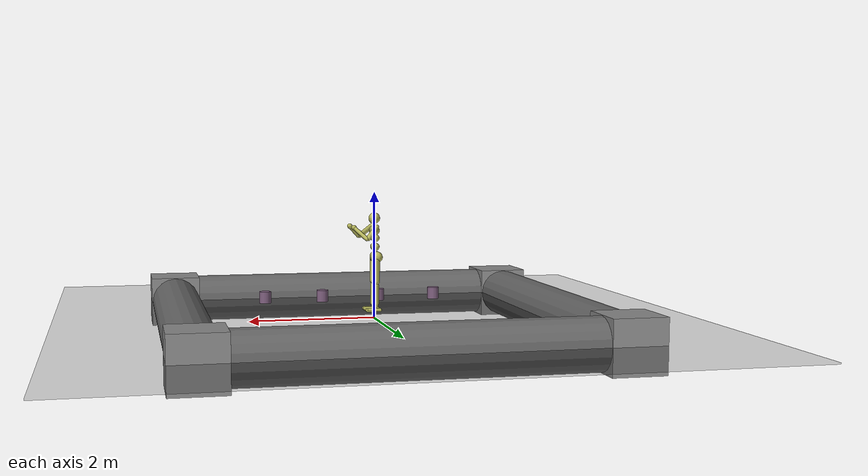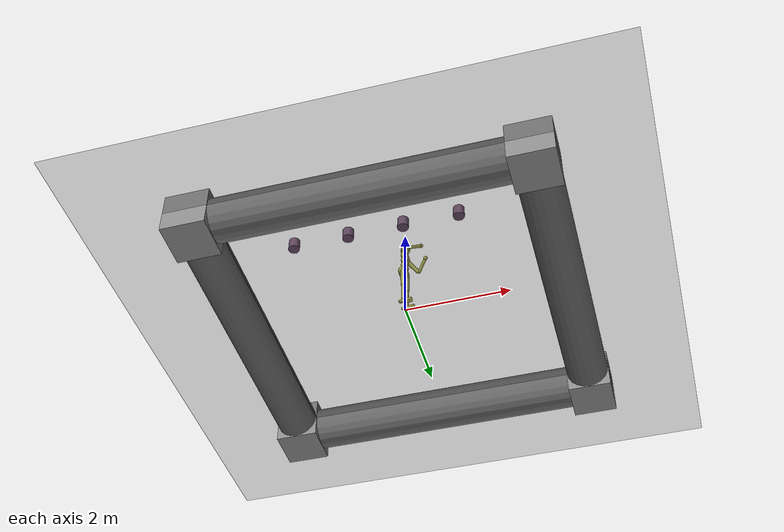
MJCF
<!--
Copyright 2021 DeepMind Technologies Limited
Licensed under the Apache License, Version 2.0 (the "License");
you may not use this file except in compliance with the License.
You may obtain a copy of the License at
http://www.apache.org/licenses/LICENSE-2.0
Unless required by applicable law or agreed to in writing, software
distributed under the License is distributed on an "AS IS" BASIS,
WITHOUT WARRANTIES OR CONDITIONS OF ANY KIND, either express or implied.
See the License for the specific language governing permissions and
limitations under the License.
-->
<mujoco model="Swarm">

    <compiler angle="degree"/>

    <option timestep="0.01" iterations="50" solver="Newton" jacobian="sparse" cone="pyramidal" tolerance="1e-10"/>

    <size njmax="1500" nconmax="500" nstack="5000000"/>

    <default>
        <geom solimp=".9 .9 .01"/>

        <default class="humanoid">
            <geom material="humanoid"/>
            <joint damping="1" limited="true"/>
        </default>

        <default class="bot">
            <geom type="cylinder" material="bot" size="0.1 0.1" condim="4" mass="5" friction="1 .01 .01"/>
        </default>

        <default class="border">
            <geom type="capsule" size="0.4" rgba=".4 .4 .4 1"/>
        </default>

        <default class="borderpost">
            <geom type="box" size="0.41 0.41 0.41" rgba=".55 .55 .55 1"/>
        </default>

        <default class="position">
			<position ctrllimited="true" forcelimited="false"></position>
		</default>

        <joint limited="true" damping="1" armature="0"/>
        <motor ctrlrange="-10 10" ctrllimited="true"/>
    </default>

    <asset>
        <texture type="skybox" builtin="gradient" width="128" height="128" rgb1=".4 .6 .8" rgb2="0 0 0"/>
        <texture name="texgeom" type="cube" builtin="flat" mark="cross" width="128" height="128"
            rgb1="0.6 0.6 0.6" rgb2="0.6 0.6 0.6" markrgb="1 1 1"/>
        <texture name="texplane" type="2d" builtin="checker" rgb1=".4 .4 .4" rgb2=".6 .6 .6"
            width="512" height="512"/>
        <material name='MatPlane' reflectance='0.3' texture="texplane" texrepeat="1 1" texuniform="true"/>
        <material name='humanoid' texture="texgeom" texuniform="true" rgba="1.2 1.2 0.6 1"/>
        <material name='bot' texture="texgeom" texuniform="true" rgba=".8 .6 .8 1" />
    </asset>

    <visual>
        <quality shadowsize="4096" offsamples="8"/>
        <map znear="0.1" force="0.05"/>
    </visual>

    <statistic extent="4"/>

    <worldbody>
        <light directional="true" diffuse=".8 .8 .8" pos="0 0 10" dir="0 0 -10"/>

        <geom type="box" size="5 5 .01" rgba="0 0 0 .1"/>
        <body name="agent1" pos="-1.5 -2 0">
            <geom class='bot' pos='0 0 .11'/>
            <joint name='slide1x' type='slide' pos='1 0 .11' axis='1 0 0' range='-50 50'/>
            <joint name='slide1y' type='slide' pos='1 0 .11' axis='0 1 0' range='-50 50'/>
        </body>
        <body name="agent2" pos="-0.5 -2 0">
            <geom class='bot' pos='0 0 .11'/>
            <joint name='slide2x' type='slide' pos='2 0 .11' axis='1 0 0' range='-50 50'/>
            <joint name='slide2y' type='slide' pos='2 0 .11' axis='0 1 0' range='-50 50'/>
        </body>
        <body name="agent3" pos="0.5 -2 0">
            <geom class='bot' pos='0 0 .11'/>
            <joint name='slide3x' type='slide' pos='3 0 .11' axis='1 0 0' range='-50 50'/>
            <joint name='slide3y' type='slide' pos='3 0 .11' axis='0 1 0' range='-50 50'/>
        </body>
        <body name="agent4" pos="1.5 -2 0">
            <geom class='bot' pos='0 0 .11'/>
            <joint name='slide4x' type='slide' pos='4 0 .11' axis='1 0 0' range='-50 50'/>
            <joint name='slide4y' type='slide' pos='4 0 .11' axis='0 1 0' range='-50 50'/>
        </body>

        <geom class="border" fromto="-3 3 0 3 3 0"  />
        <geom class="border" fromto="-3 -3 0 3 -3 0"  />
        <geom class="border" fromto="3 3 0 3 -3 0"  />
        <geom class="border" fromto="-3 3 0 -3 -3 0"  />
        <geom class="borderpost" pos="3 3 0"/>
        <geom class="borderpost" pos="-3 3 0"/>
        <geom class="borderpost" pos="3 -3 0"/>
        <geom class="borderpost" pos="-3 -3 0"/>

        <body name='target' pos='0 0 1.4' childclass="humanoid">
            <freejoint name="root"/>
            <geom name='torso1' type='capsule' fromto='0 -.07 0 0 .07 0'  size='0.07'/>
            <geom name='head' type='sphere' pos='0 0 .19' size='.09'/>
            <geom name='uwaist' type='capsule' fromto='-.01 -.06 -.12 -.01 .06 -.12' size='0.06'/>
            <body name='lwaist' pos='-.01 0 -0.260' quat='1.000 0 -0.002 0' >
                <geom name='lwaist' type='capsule' fromto='0 -.06 0 0 .06 0'  size='0.06' />
                <joint name='abdomen_z' type='hinge' pos='0 0 0.065' axis='0 0 1' range='-45 45' damping='5' stiffness='20' armature='0.02' />
                <joint name='abdomen_y' type='hinge' pos='0 0 0.065' axis='0 1 0' range='-75 30' damping='5' stiffness='10' armature='0.02' />
                <body name='pelvis' pos='0 0 -0.165' quat='1.000 0 -0.002 0' >
                    <joint name='abdomen_x' type='hinge' pos='0 0 0.1' axis='1 0 0' range='-35 35' damping='5' stiffness='10' armature='0.02' />
                    <geom name='butt' type='capsule' fromto='-.02 -.07 0 -.02 .07 0'  size='0.09' />
                    <body name='right_thigh' pos='0 -0.1 -0.04' >
                        <joint name='right_hip_x' type='hinge' pos='0 0 0' axis='1 0 0' range='-25 5'   damping='5' stiffness='10' armature='0.01' />
                        <joint name='right_hip_z' type='hinge' pos='0 0 0' axis='0 0 1' range='-60 35'  damping='5' stiffness='10' armature='0.01' />
                        <joint name='right_hip_y' type='hinge' pos='0 0 0' axis='0 1 0' range='-120 20' damping='5' stiffness='20' armature='0.01' />
                        <geom name='right_thigh1' type='capsule' fromto='0 0 0 0 0.01 -.34'  size='0.06' />
                        <body name='right_shin' pos='0 0.01 -0.403' >
                            <joint name='right_knee' type='hinge' pos='0 0 .02' axis='0 -1 0' range='-160 -2' stiffness='1' armature='0.0060' />
                            <geom name='right_shin1' type='capsule' fromto='0 0 0 0 0 -.3'   size='0.049' />
                            <body name='right_foot' pos='0 0 -.39' >
                                <joint name='right_ankle_y' type='hinge' pos='0 0 0.08' axis='0 1 0'   range='-50 50' stiffness='4' armature='0.0008' />
                                <joint name='right_ankle_x' type='hinge' pos='0 0 0.04' axis='1 0 0.5' range='-50 50' stiffness='1'  armature='0.0006' />
                                <geom name='right_foot_cap1' type='capsule' fromto='-.07 -0.02 0 0.14 -0.04 0'  size='0.027' />
                                <geom name='right_foot_cap2' type='capsule' fromto='-.07 0 0 0.14  0.02 0'  size='0.027' />
                            </body>
                        </body>
                    </body>
                    <body name='left_thigh' pos='0 0.1 -0.04' >
                        <joint name='left_hip_x' type='hinge' pos='0 0 0' axis='-1 0 0' range='-25 5'  damping='5' stiffness='10' armature='0.01' />
                        <joint name='left_hip_z' type='hinge' pos='0 0 0' axis='0 0 -1' range='-60 35' damping='5' stiffness='10' armature='0.01' />
                        <joint name='left_hip_y' type='hinge' pos='0 0 0' axis='0 1 0' range='-120 20' damping='5' stiffness='20' armature='0.01' />
                        <geom name='left_thigh1' type='capsule' fromto='0 0 0 0 -0.01 -.34'  size='0.06' />
                        <body name='left_shin' pos='0 -0.01 -0.403' >
                            <joint name='left_knee' type='hinge' pos='0 0 .02' axis='0 -1 0' range='-160 -2' stiffness='1' armature='0.0060' />
                            <geom name='left_shin1' type='capsule' fromto='0 0 0 0 0 -.3'   size='0.049' />
                            <body name='left_foot' pos='0 0 -.39' >
                                <joint name='left_ankle_y' type='hinge' pos='0 0 0.08' axis='0 1 0'   range='-50 50'  stiffness='4' armature='0.0008' />
                                <joint name='left_ankle_x' type='hinge' pos='0 0 0.04' axis='1 0 0.5' range='-50 50'  stiffness='1'  armature='0.0006' />
                                <geom name='left_foot_cap1' type='capsule' fromto='-.07 0.02 0 0.14 0.04 0'  size='0.027' />
                                <geom name='left_foot_cap2' type='capsule' fromto='-.07 0 0 0.14  -0.02 0'  size='0.027' />
                            </body>
                        </body>
                    </body>
                </body>
            </body>
            <body name='right_upper_arm' pos='0 -0.17 0.06' >
                <joint name='right_shoulder1' type='hinge' pos='0 0 0' axis='2 1 1'  range='-85 60' stiffness='1' armature='0.0068' />
                <joint name='right_shoulder2' type='hinge' pos='0 0 0' axis='0 -1 1' range='-85 60' stiffness='1'  armature='0.0051' />
                <geom name='right_uarm1' type='capsule' fromto='0 0 0 .16 -.16 -.16'  size='0.04 0.16' />
                <body name='right_lower_arm' pos='.18 -.18 -.18' >
                    <joint name='right_elbow' type='hinge' pos='0 0 0' axis='0 -1 1' range='-90 50'  stiffness='0' armature='0.0028' />
                    <geom name='right_larm' type='capsule' fromto='0.01 0.01 0.01 .17 .17 .17'  size='0.031' />
                    <geom name='right_hand' type='sphere' pos='.18 .18 .18'  size='0.04'/>
                </body>
            </body>
            <body name='left_upper_arm' pos='0 0.17 0.06' >
                <joint name='left_shoulder1' type='hinge' pos='0 0 0' axis='2 -1 1' range='-60 85' stiffness='1' armature='0.0068' />
                <joint name='left_shoulder2' type='hinge' pos='0 0 0' axis='0 1 1' range='-60 85'  stiffness='1' armature='0.0051' />
                <geom name='left_uarm1' type='capsule' fromto='0 0 0 .16 .16 -.16'  size='0.04 0.16' />
                <body name='left_lower_arm' pos='.18 .18 -.18' >
                    <joint name='left_elbow' type='hinge' pos='0 0 0' axis='0 -1 -1' range='-90 50' stiffness='0' armature='0.0028' />
                    <geom name='left_larm' type='capsule' fromto='0.01 -0.01 0.01 .17 -.17 .17'  size='0.031' />
                    <geom name='left_hand' type='sphere' pos='.18 -.18 .18'  size='0.04'/>
                </body>
            </body>
        </body>

    </worldbody>

    <actuator>
        <motor name='m1x'    gear='35' joint='slide1x'/>
        <motor name='m1y'    gear='35' joint='slide1y'/>
        <motor name='m2x'    gear='35' joint='slide2x'/>
        <motor name='m2y'    gear='35' joint='slide2y'/>
        <motor name='m3x'    gear='35' joint='slide3x'/>
        <motor name='m3y'    gear='35' joint='slide3y'/>
        <motor name='m4x'    gear='35' joint='slide4x'/>
        <motor name='m4y'    gear='35' joint='slide4y'/>
    </actuator>
</mujoco>
